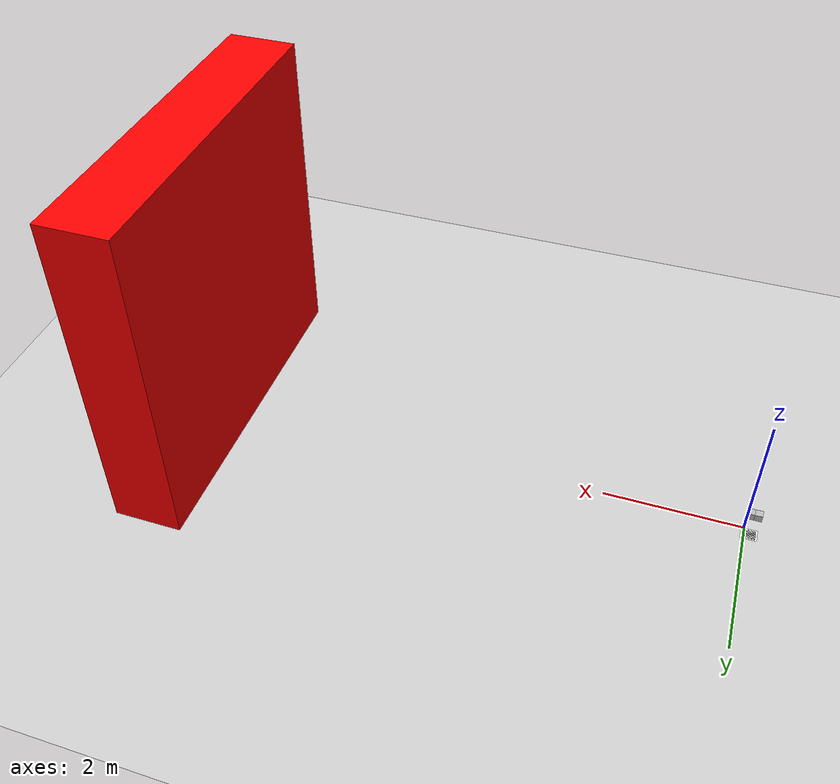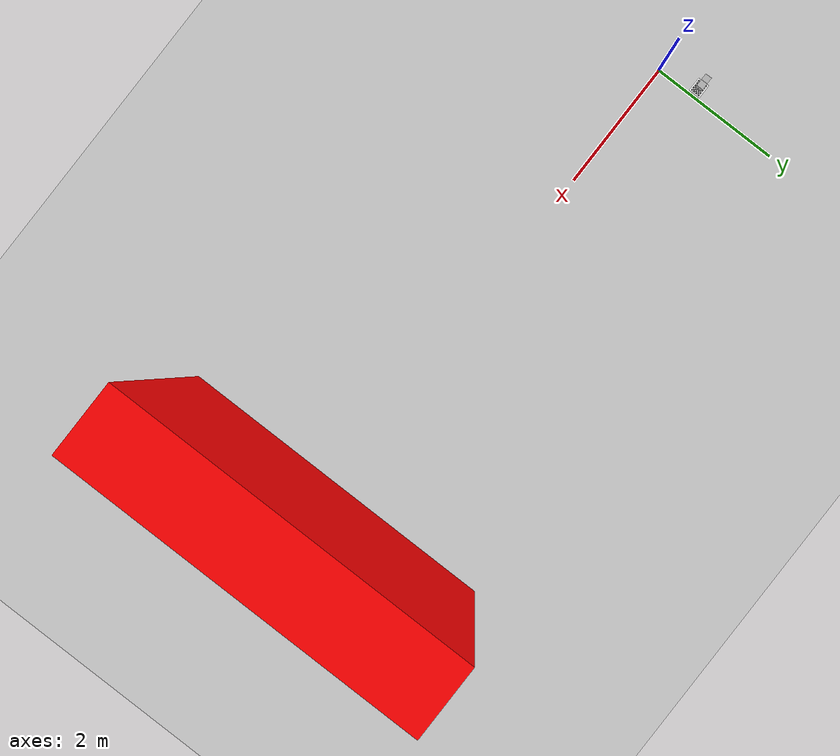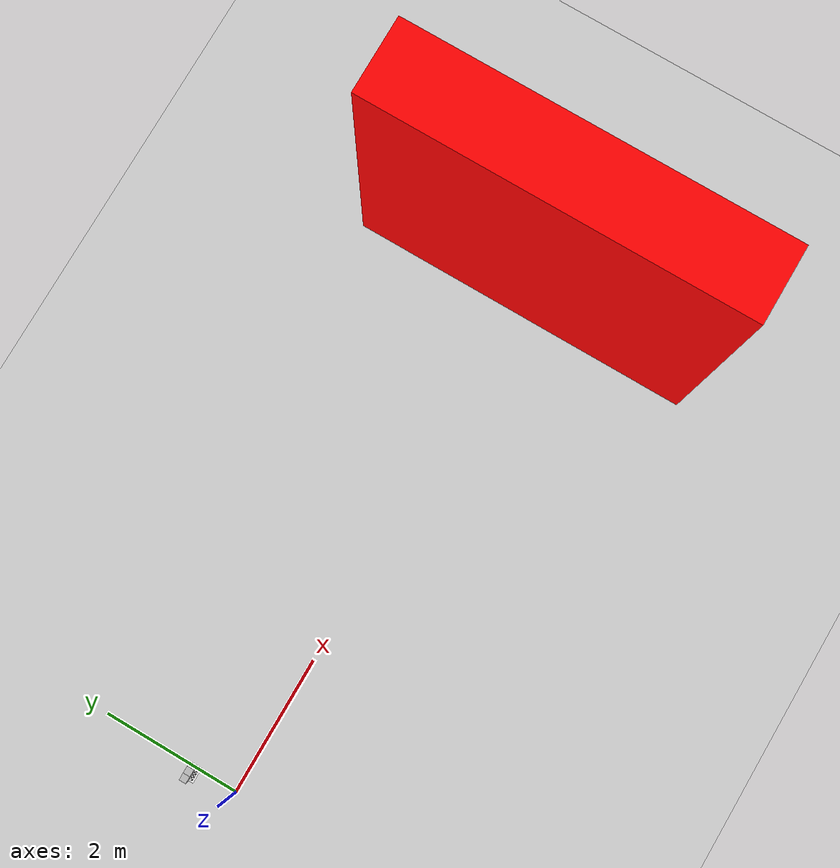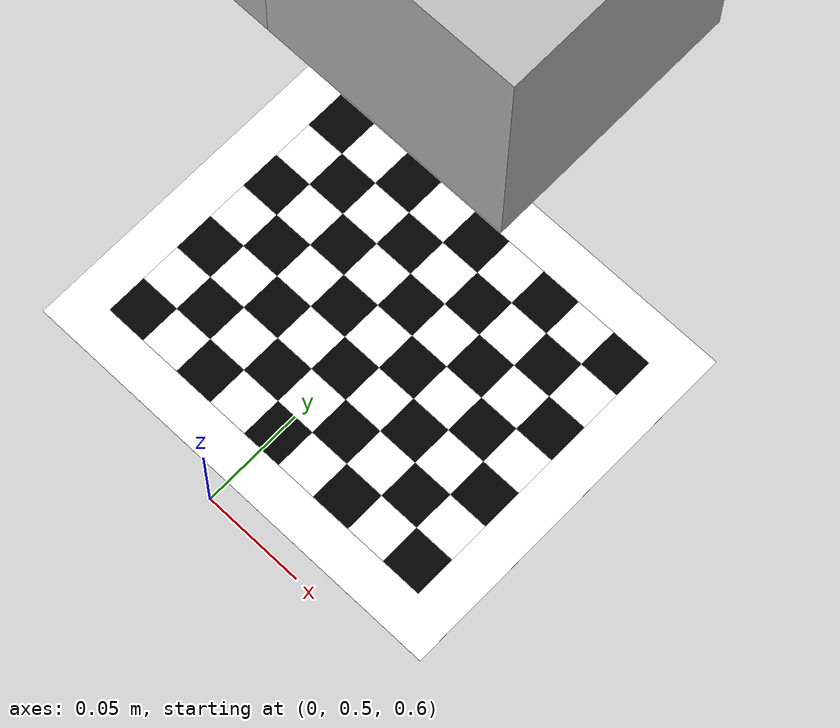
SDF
<sdf version="1.8">
 <world name="default">
  <plugin filename="gz-sim-user-commands-system" name="gz::sim::systems::UserCommands"/>
  <plugin filename="gz-sim-scene-broadcaster-system" name="gz::sim::systems::SceneBroadcaster"/>
  <plugin filename="gz-sim-sensors-system" name="gz::sim::systems::Sensors">
   <render_engine>ogre</render_engine>
  </plugin>
  <physics name="ode_tuned" type="ode">
   <max_step_size>0.001</max_step_size>
   <real_time_factor>1.0</real_time_factor>
   <ode>
    <solver><type>world</type><iters>200</iters><sor>1.3</sor></solver>
    <constraints><cfm>1e-6</cfm><erp>0.2</erp></constraints>
   </ode>
  </physics>
  <plugin filename="gz-sim-physics-system" name="gz::sim::systems::Physics"/>
  <include><uri>https://fuel.gazebosim.org/1.0/OpenRobotics/models/Sun</uri></include>
  <include><uri>https://fuel.gazebosim.org/1.0/OpenRobotics/models/Ground Plane</uri></include>
  <include><pose>0 0.6 0.6 0 0.0 1.570796327</pose><uri>checkerboard.sdf</uri></include>
  <model name="box">
   <pose>8.0 0 2.5 9.3851161270657419e-17
        -5.6069031016222445e-17 -3.9093360295039407e-19</pose>
   <link name="box_link">
    <inertial>
     <inertia><ixx>0.16666</ixx><ixy>0</ixy><ixz>0</ixz><iyy>0.16666</iyy><iyz>0</iyz><izz>0.16666</izz></inertia>
     <mass>1</mass>
    </inertial>
    <collision name="box_collision"><geometry><box><size>1.0 5.0 5.0</size></box></geometry></collision>
    <visual name="box_visual">
     <geometry><box><size>1.0 5.0 5.0</size></box></geometry>
     <material>
      <ambient>0.300000012 0.300000012 0.300000012 1</ambient>
      <diffuse>1 0 0 1</diffuse>
      <specular>1 1 1 1</specular>
     </material>
    </visual>
   </link>
   <static>false</static>
  </model>
  <model name="left_camera">
   <static>true</static>
   <pose>0.05 0.6 1.0 0 0.0 0.0</pose>
   <link name="link">
    <visual name="visual"><geometry><box><size>0.1 0.1 0.1</size></box></geometry></visual>
    <sensor name="camera" type="wideanglecamera">
     <pose>0 0 0 0 1.570796327 0</pose>
     <topic>left_camera</topic>
     <visualize>true</visualize>
     <update_rate>30</update_rate>
     <always_on>true</always_on>
     <camera>
      <horizontal_fov>1.9</horizontal_fov>
      <image><width>1920</width><height>1080</height></image>
      <clip><near>0.1</near><far>100</far></clip>
      <lens>
       <type>equidistant</type>
       <scale_to_hfov>true</scale_to_hfov>
       <cutoff_angle>1.5707</cutoff_angle>
       <env_texture_size>2048</env_texture_size>
      </lens>
      <noise><type>gaussian</type><mean>0.0</mean><stddev>0.005</stddev></noise>
     </camera>
    </sensor>
   </link>
  </model>
  <model name="right_camera">
   <static>true</static>
   <pose>-0.05 0.6 1.0 0 0.0 0.0</pose>
   <link name="link">
    <visual name="visual"><geometry><box><size>0.1 0.1 0.1</size></box></geometry></visual>
    <sensor name="camera" type="wideanglecamera">
     <pose>0 0 0 0 1.570796327 0</pose>
     <topic>right_camera</topic>
     <visualize>true</visualize>
     <update_rate>30</update_rate>
     <always_on>true</always_on>
     <camera>
      <horizontal_fov>1.9</horizontal_fov>
      <image><width>1920</width><height>1080</height></image>
      <clip><near>0.1</near><far>100</far></clip>
      <lens>
       <type>equidistant</type>
       <scale_to_hfov>true</scale_to_hfov>
       <cutoff_angle>1.5707</cutoff_angle>
       <env_texture_size>2048</env_texture_size>
      </lens>
      <noise><type>gaussian</type><mean>0.0</mean><stddev>0.005</stddev></noise>
     </camera>
    </sensor>
   </link>
  </model>
 </world>
</sdf>

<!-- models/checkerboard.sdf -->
<sdf version="1.4">
  <model name="checkerboard_7_9_0_02">
  <static>true</static>
  <link name="checkerboard_7_9_0_02_body">
      <visual name="checker_0_0">
        <pose>-0.060000000000000005 -0.08 0 0 0 0</pose>
        <geometry>
          <box>
            <size>0.02 0.02 0.0002</size>
          </box>
        </geometry>
        <material>
          <ambient>0 0 0 1</ambient>
          <diffuse>0 0 0 1</diffuse>
          <specular>0 0 0 1</specular>
          <emissive>0 0 0 1</emissive>
        </material>
      </visual>
      <visual name="checker_0_1">
        <pose>-0.060000000000000005 -0.06 0 0 0 0</pose>
        <geometry>
          <box>
            <size>0.02 0.02 0.0002</size>
          </box>
        </geometry>
        <material>
          <ambient>1 1 1 1</ambient>
          <diffuse>1 1 1 1</diffuse>
          <specular>1 1 1 1</specular>
          <emissive>1 1 1 1</emissive>
        </material>
      </visual>
      <visual name="checker_0_2">
        <pose>-0.060000000000000005 -0.039999999999999994 0 0 0 0</pose>
        <geometry>
          <box>
            <size>0.02 0.02 0.0002</size>
          </box>
        </geometry>
        <material>
          <ambient>0 0 0 1</ambient>
          <diffuse>0 0 0 1</diffuse>
          <specular>0 0 0 1</specular>
          <emissive>0 0 0 1</emissive>
        </material>
      </visual>
      <visual name="checker_0_3">
        <pose>-0.060000000000000005 -0.020000000000000004 0 0 0 0</pose>
        <geometry>
          <box>
            <size>0.02 0.02 0.0002</size>
          </box>
        </geometry>
        <material>
          <ambient>1 1 1 1</ambient>
          <diffuse>1 1 1 1</diffuse>
          <specular>1 1 1 1</specular>
          <emissive>1 1 1 1</emissive>
        </material>
      </visual>
      <visual name="checker_0_4">
        <pose>-0.060000000000000005 0.0 0 0 0 0</pose>
        <geometry>
          <box>
            <size>0.02 0.02 0.0002</size>
          </box>
        </geometry>
        <material>
          <ambient>0 0 0 1</ambient>
          <diffuse>0 0 0 1</diffuse>
          <specular>0 0 0 1</specular>
          <emissive>0 0 0 1</emissive>
        </material>
      </visual>
      <visual name="checker_0_5">
        <pose>-0.060000000000000005 0.020000000000000004 0 0 0 0</pose>
        <geometry>
          <box>
            <size>0.02 0.02 0.0002</size>
          </box>
        </geometry>
        <material>
          <ambient>1 1 1 1</ambient>
          <diffuse>1 1 1 1</diffuse>
          <specular>1 1 1 1</specular>
          <emissive>1 1 1 1</emissive>
        </material>
      </visual>
      <visual name="checker_0_6">
        <pose>-0.060000000000000005 0.04000000000000001 0 0 0 0</pose>
        <geometry>
          <box>
            <size>0.02 0.02 0.0002</size>
          </box>
        </geometry>
        <material>
          <ambient>0 0 0 1</ambient>
          <diffuse>0 0 0 1</diffuse>
          <specular>0 0 0 1</specular>
          <emissive>0 0 0 1</emissive>
        </material>
      </visual>
      <visual name="checker_0_7">
        <pose>-0.060000000000000005 0.060000000000000026 0 0 0 0</pose>
        <geometry>
          <box>
            <size>0.02 0.02 0.0002</size>
          </box>
        </geometry>
        <material>
          <ambient>1 1 1 1</ambient>
          <diffuse>1 1 1 1</diffuse>
          <specular>1 1 1 1</specular>
          <emissive>1 1 1 1</emissive>
        </material>
      </visual>
      <visual name="checker_0_8">
        <pose>-0.060000000000000005 0.08000000000000002 0 0 0 0</pose>
        <geometry>
          <box>
            <size>0.02 0.02 0.0002</size>
          </box>
        </geometry>
        <material>
          <ambient>0 0 0 1</ambient>
          <diffuse>0 0 0 1</diffuse>
          <specular>0 0 0 1</specular>
          <emissive>0 0 0 1</emissive>
        </material>
      </visual>
      <visual name="checker_1_0">
        <pose>-0.04000000000000001 -0.08 0 0 0 0</pose>
        <geometry>
          <box>
            <size>0.02 0.02 0.0002</size>
          </box>
        </geometry>
        <material>
          <ambient>1 1 1 1</ambient>
          <diffuse>1 1 1 1</diffuse>
          <specular>1 1 1 1</specular>
          <emissive>1 1 1 1</emissive>
        </material>
      </visual>
      <visual name="checker_1_1">
        <pose>-0.04000000000000001 -0.06 0 0 0 0</pose>
        <geometry>
          <box>
            <size>0.02 0.02 0.0002</size>
          </box>
        </geometry>
        <material>
          <ambient>0 0 0 1</ambient>
          <diffuse>0 0 0 1</diffuse>
          <specular>0 0 0 1</specular>
          <emissive>0 0 0 1</emissive>
        </material>
      </visual>
      <visual name="checker_1_2">
        <pose>-0.04000000000000001 -0.039999999999999994 0 0 0 0</pose>
        <geometry>
          <box>
            <size>0.02 0.02 0.0002</size>
          </box>
        </geometry>
        <material>
          <ambient>1 1 1 1</ambient>
          <diffuse>1 1 1 1</diffuse>
          <specular>1 1 1 1</specular>
          <emissive>1 1 1 1</emissive>
        </material>
      </visual>
      <visual name="checker_1_3">
        <pose>-0.04000000000000001 -0.020000000000000004 0 0 0 0</pose>
        <geometry>
          <box>
            <size>0.02 0.02 0.0002</size>
          </box>
        </geometry>
        <material>
          <ambient>0 0 0 1</ambient>
          <diffuse>0 0 0 1</diffuse>
          <specular>0 0 0 1</specular>
          <emissive>0 0 0 1</emissive>
        </material>
      </visual>
      <visual name="checker_1_4">
        <pose>-0.04000000000000001 0.0 0 0 0 0</pose>
        <geometry>
          <box>
            <size>0.02 0.02 0.0002</size>
          </box>
        </geometry>
        <material>
          <ambient>1 1 1 1</ambient>
          <diffuse>1 1 1 1</diffuse>
          <specular>1 1 1 1</specular>
          <emissive>1 1 1 1</emissive>
        </material>
      </visual>
      <visual name="checker_1_5">
        <pose>-0.04000000000000001 0.020000000000000004 0 0 0 0</pose>
        <geometry>
          <box>
            <size>0.02 0.02 0.0002</size>
          </box>
        </geometry>
        <material>
          <ambient>0 0 0 1</ambient>
          <diffuse>0 0 0 1</diffuse>
          <specular>0 0 0 1</specular>
          <emissive>0 0 0 1</emissive>
        </material>
      </visual>
      <visual name="checker_1_6">
        <pose>-0.04000000000000001 0.04000000000000001 0 0 0 0</pose>
        <geometry>
          <box>
            <size>0.02 0.02 0.0002</size>
          </box>
        </geometry>
        <material>
          <ambient>1 1 1 1</ambient>
          <diffuse>1 1 1 1</diffuse>
          <specular>1 1 1 1</specular>
          <emissive>1 1 1 1</emissive>
        </material>
      </visual>
      <visual name="checker_1_7">
        <pose>-0.04000000000000001 0.060000000000000026 0 0 0 0</pose>
        <geometry>
          <box>
            <size>0.02 0.02 0.0002</size>
          </box>
        </geometry>
        <material>
          <ambient>0 0 0 1</ambient>
          <diffuse>0 0 0 1</diffuse>
          <specular>0 0 0 1</specular>
          <emissive>0 0 0 1</emissive>
        </material>
      </visual>
      <visual name="checker_1_8">
        <pose>-0.04000000000000001 0.08000000000000002 0 0 0 0</pose>
        <geometry>
          <box>
            <size>0.02 0.02 0.0002</size>
          </box>
        </geometry>
        <material>
          <ambient>1 1 1 1</ambient>
          <diffuse>1 1 1 1</diffuse>
          <specular>1 1 1 1</specular>
          <emissive>1 1 1 1</emissive>
        </material>
      </visual>
      <visual name="checker_2_0">
        <pose>-0.020000000000000004 -0.08 0 0 0 0</pose>
        <geometry>
          <box>
            <size>0.02 0.02 0.0002</size>
          </box>
        </geometry>
        <material>
          <ambient>0 0 0 1</ambient>
          <diffuse>0 0 0 1</diffuse>
          <specular>0 0 0 1</specular>
          <emissive>0 0 0 1</emissive>
        </material>
      </visual>
      <visual name="checker_2_1">
        <pose>-0.020000000000000004 -0.06 0 0 0 0</pose>
        <geometry>
          <box>
            <size>0.02 0.02 0.0002</size>
          </box>
        </geometry>
        <material>
          <ambient>1 1 1 1</ambient>
          <diffuse>1 1 1 1</diffuse>
          <specular>1 1 1 1</specular>
          <emissive>1 1 1 1</emissive>
        </material>
      </visual>
      <visual name="checker_2_2">
        <pose>-0.020000000000000004 -0.039999999999999994 0 0 0 0</pose>
        <geometry>
          <box>
            <size>0.02 0.02 0.0002</size>
          </box>
        </geometry>
        <material>
          <ambient>0 0 0 1</ambient>
          <diffuse>0 0 0 1</diffuse>
          <specular>0 0 0 1</specular>
          <emissive>0 0 0 1</emissive>
        </material>
      </visual>
      <visual name="checker_2_3">
        <pose>-0.020000000000000004 -0.020000000000000004 0 0 0 0</pose>
        <geometry>
          <box>
            <size>0.02 0.02 0.0002</size>
          </box>
        </geometry>
        <material>
          <ambient>1 1 1 1</ambient>
          <diffuse>1 1 1 1</diffuse>
          <specular>1 1 1 1</specular>
          <emissive>1 1 1 1</emissive>
        </material>
      </visual>
      <visual name="checker_2_4">
        <pose>-0.020000000000000004 0.0 0 0 0 0</pose>
        <geometry>
          <box>
            <size>0.02 0.02 0.0002</size>
          </box>
        </geometry>
        <material>
          <ambient>0 0 0 1</ambient>
          <diffuse>0 0 0 1</diffuse>
          <specular>0 0 0 1</specular>
          <emissive>0 0 0 1</emissive>
        </material>
      </visual>
      <visual name="checker_2_5">
        <pose>-0.020000000000000004 0.020000000000000004 0 0 0 0</pose>
        <geometry>
          <box>
            <size>0.02 0.02 0.0002</size>
          </box>
        </geometry>
        <material>
          <ambient>1 1 1 1</ambient>
          <diffuse>1 1 1 1</diffuse>
          <specular>1 1 1 1</specular>
          <emissive>1 1 1 1</emissive>
        </material>
      </visual>
      <visual name="checker_2_6">
        <pose>-0.020000000000000004 0.04000000000000001 0 0 0 0</pose>
        <geometry>
          <box>
            <size>0.02 0.02 0.0002</size>
          </box>
        </geometry>
        <material>
          <ambient>0 0 0 1</ambient>
          <diffuse>0 0 0 1</diffuse>
          <specular>0 0 0 1</specular>
          <emissive>0 0 0 1</emissive>
        </material>
      </visual>
      <visual name="checker_2_7">
        <pose>-0.020000000000000004 0.060000000000000026 0 0 0 0</pose>
        <geometry>
          <box>
            <size>0.02 0.02 0.0002</size>
          </box>
        </geometry>
        <material>
          <ambient>1 1 1 1</ambient>
          <diffuse>1 1 1 1</diffuse>
          <specular>1 1 1 1</specular>
          <emissive>1 1 1 1</emissive>
        </material>
      </visual>
      <visual name="checker_2_8">
        <pose>-0.020000000000000004 0.08000000000000002 0 0 0 0</pose>
        <geometry>
          <box>
            <size>0.02 0.02 0.0002</size>
          </box>
        </geometry>
        <material>
          <ambient>0 0 0 1</ambient>
          <diffuse>0 0 0 1</diffuse>
          <specular>0 0 0 1</specular>
          <emissive>0 0 0 1</emissive>
        </material>
      </visual>
      <visual name="checker_3_0">
        <pose>-1.3877787807814457e-17 -0.08 0 0 0 0</pose>
        <geometry>
          <box>
            <size>0.02 0.02 0.0002</size>
          </box>
        </geometry>
        <material>
          <ambient>1 1 1 1</ambient>
          <diffuse>1 1 1 1</diffuse>
          <specular>1 1 1 1</specular>
          <emissive>1 1 1 1</emissive>
        </material>
      </visual>
      <visual name="checker_3_1">
        <pose>-1.3877787807814457e-17 -0.06 0 0 0 0</pose>
        <geometry>
          <box>
            <size>0.02 0.02 0.0002</size>
          </box>
        </geometry>
        <material>
          <ambient>0 0 0 1</ambient>
          <diffuse>0 0 0 1</diffuse>
          <specular>0 0 0 1</specular>
          <emissive>0 0 0 1</emissive>
        </material>
      </visual>
      <visual name="checker_3_2">
        <pose>-1.3877787807814457e-17 -0.039999999999999994 0 0 0 0</pose>
        <geometry>
          <box>
            <size>0.02 0.02 0.0002</size>
          </box>
        </geometry>
        <material>
          <ambient>1 1 1 1</ambient>
          <diffuse>1 1 1 1</diffuse>
          <specular>1 1 1 1</specular>
          <emissive>1 1 1 1</emissive>
        </material>
      </visual>
      <visual name="checker_3_3">
        <pose>-1.3877787807814457e-17 -0.020000000000000004 0 0 0 0</pose>
        <geometry>
          <box>
            <size>0.02 0.02 0.0002</size>
          </box>
        </geometry>
        <material>
          <ambient>0 0 0 1</ambient>
          <diffuse>0 0 0 1</diffuse>
          <specular>0 0 0 1</specular>
          <emissive>0 0 0 1</emissive>
        </material>
      </visual>
      <visual name="checker_3_4">
        <pose>-1.3877787807814457e-17 0.0 0 0 0 0</pose>
        <geometry>
          <box>
            <size>0.02 0.02 0.0002</size>
          </box>
        </geometry>
        <material>
          <ambient>1 1 1 1</ambient>
          <diffuse>1 1 1 1</diffuse>
          <specular>1 1 1 1</specular>
          <emissive>1 1 1 1</emissive>
        </material>
      </visual>
      <visual name="checker_3_5">
        <pose>-1.3877787807814457e-17 0.020000000000000004 0 0 0 0</pose>
        <geometry>
          <box>
            <size>0.02 0.02 0.0002</size>
          </box>
        </geometry>
        <material>
          <ambient>0 0 0 1</ambient>
          <diffuse>0 0 0 1</diffuse>
          <specular>0 0 0 1</specular>
          <emissive>0 0 0 1</emissive>
        </material>
      </visual>
      <visual name="checker_3_6">
        <pose>-1.3877787807814457e-17 0.04000000000000001 0 0 0 0</pose>
        <geometry>
          <box>
            <size>0.02 0.02 0.0002</size>
          </box>
        </geometry>
        <material>
          <ambient>1 1 1 1</ambient>
          <diffuse>1 1 1 1</diffuse>
          <specular>1 1 1 1</specular>
          <emissive>1 1 1 1</emissive>
        </material>
      </visual>
      <visual name="checker_3_7">
        <pose>-1.3877787807814457e-17 0.060000000000000026 0 0 0 0</pose>
        <geometry>
          <box>
            <size>0.02 0.02 0.0002</size>
          </box>
        </geometry>
        <material>
          <ambient>0 0 0 1</ambient>
          <diffuse>0 0 0 1</diffuse>
          <specular>0 0 0 1</specular>
          <emissive>0 0 0 1</emissive>
        </material>
      </visual>
      <visual name="checker_3_8">
        <pose>-1.3877787807814457e-17 0.08000000000000002 0 0 0 0</pose>
        <geometry>
          <box>
            <size>0.02 0.02 0.0002</size>
          </box>
        </geometry>
        <material>
          <ambient>1 1 1 1</ambient>
          <diffuse>1 1 1 1</diffuse>
          <specular>1 1 1 1</specular>
          <emissive>1 1 1 1</emissive>
        </material>
      </visual>
      <visual name="checker_4_0">
        <pose>0.01999999999999999 -0.08 0 0 0 0</pose>
        <geometry>
          <box>
            <size>0.02 0.02 0.0002</size>
          </box>
        </geometry>
        <material>
          <ambient>0 0 0 1</ambient>
          <diffuse>0 0 0 1</diffuse>
          <specular>0 0 0 1</specular>
          <emissive>0 0 0 1</emissive>
        </material>
      </visual>
      <visual name="checker_4_1">
        <pose>0.01999999999999999 -0.06 0 0 0 0</pose>
        <geometry>
          <box>
            <size>0.02 0.02 0.0002</size>
          </box>
        </geometry>
        <material>
          <ambient>1 1 1 1</ambient>
          <diffuse>1 1 1 1</diffuse>
          <specular>1 1 1 1</specular>
          <emissive>1 1 1 1</emissive>
        </material>
      </visual>
      <visual name="checker_4_2">
        <pose>0.01999999999999999 -0.039999999999999994 0 0 0 0</pose>
        <geometry>
          <box>
            <size>0.02 0.02 0.0002</size>
          </box>
        </geometry>
        <material>
          <ambient>0 0 0 1</ambient>
          <diffuse>0 0 0 1</diffuse>
          <specular>0 0 0 1</specular>
          <emissive>0 0 0 1</emissive>
        </material>
      </visual>
      <visual name="checker_4_3">
        <pose>0.01999999999999999 -0.020000000000000004 0 0 0 0</pose>
        <geometry>
          <box>
            <size>0.02 0.02 0.0002</size>
          </box>
        </geometry>
        <material>
          <ambient>1 1 1 1</ambient>
          <diffuse>1 1 1 1</diffuse>
          <specular>1 1 1 1</specular>
          <emissive>1 1 1 1</emissive>
        </material>
      </visual>
      <visual name="checker_4_4">
        <pose>0.01999999999999999 0.0 0 0 0 0</pose>
        <geometry>
          <box>
            <size>0.02 0.02 0.0002</size>
          </box>
        </geometry>
        <material>
          <ambient>0 0 0 1</ambient>
          <diffuse>0 0 0 1</diffuse>
          <specular>0 0 0 1</specular>
          <emissive>0 0 0 1</emissive>
        </material>
      </visual>
      <visual name="checker_4_5">
        <pose>0.01999999999999999 0.020000000000000004 0 0 0 0</pose>
        <geometry>
          <box>
            <size>0.02 0.02 0.0002</size>
          </box>
        </geometry>
        <material>
          <ambient>1 1 1 1</ambient>
          <diffuse>1 1 1 1</diffuse>
          <specular>1 1 1 1</specular>
          <emissive>1 1 1 1</emissive>
        </material>
      </visual>
      <visual name="checker_4_6">
        <pose>0.01999999999999999 0.04000000000000001 0 0 0 0</pose>
        <geometry>
          <box>
            <size>0.02 0.02 0.0002</size>
          </box>
        </geometry>
        <material>
          <ambient>0 0 0 1</ambient>
          <diffuse>0 0 0 1</diffuse>
          <specular>0 0 0 1</specular>
          <emissive>0 0 0 1</emissive>
        </material>
      </visual>
      <visual name="checker_4_7">
        <pose>0.01999999999999999 0.060000000000000026 0 0 0 0</pose>
        <geometry>
          <box>
            <size>0.02 0.02 0.0002</size>
          </box>
        </geometry>
        <material>
          <ambient>1 1 1 1</ambient>
          <diffuse>1 1 1 1</diffuse>
          <specular>1 1 1 1</specular>
          <emissive>1 1 1 1</emissive>
        </material>
      </visual>
      <visual name="checker_4_8">
        <pose>0.01999999999999999 0.08000000000000002 0 0 0 0</pose>
        <geometry>
          <box>
            <size>0.02 0.02 0.0002</size>
          </box>
        </geometry>
        <material>
          <ambient>0 0 0 1</ambient>
          <diffuse>0 0 0 1</diffuse>
          <specular>0 0 0 1</specular>
          <emissive>0 0 0 1</emissive>
        </material>
      </visual>
      <visual name="checker_5_0">
        <pose>0.039999999999999994 -0.08 0 0 0 0</pose>
        <geometry>
          <box>
            <size>0.02 0.02 0.0002</size>
          </box>
        </geometry>
        <material>
          <ambient>1 1 1 1</ambient>
          <diffuse>1 1 1 1</diffuse>
          <specular>1 1 1 1</specular>
          <emissive>1 1 1 1</emissive>
        </material>
      </visual>
      <visual name="checker_5_1">
        <pose>0.039999999999999994 -0.06 0 0 0 0</pose>
        <geometry>
          <box>
            <size>0.02 0.02 0.0002</size>
          </box>
        </geometry>
        <material>
          <ambient>0 0 0 1</ambient>
          <diffuse>0 0 0 1</diffuse>
          <specular>0 0 0 1</specular>
          <emissive>0 0 0 1</emissive>
        </material>
      </visual>
      <visual name="checker_5_2">
        <pose>0.039999999999999994 -0.039999999999999994 0 0 0 0</pose>
        <geometry>
          <box>
            <size>0.02 0.02 0.0002</size>
          </box>
        </geometry>
        <material>
          <ambient>1 1 1 1</ambient>
          <diffuse>1 1 1 1</diffuse>
          <specular>1 1 1 1</specular>
          <emissive>1 1 1 1</emissive>
        </material>
      </visual>
      <visual name="checker_5_3">
        <pose>0.039999999999999994 -0.020000000000000004 0 0 0 0</pose>
        <geometry>
          <box>
            <size>0.02 0.02 0.0002</size>
          </box>
        </geometry>
        <material>
          <ambient>0 0 0 1</ambient>
          <diffuse>0 0 0 1</diffuse>
          <specular>0 0 0 1</specular>
          <emissive>0 0 0 1</emissive>
        </material>
      </visual>
      <visual name="checker_5_4">
        <pose>0.039999999999999994 0.0 0 0 0 0</pose>
        <geometry>
          <box>
            <size>0.02 0.02 0.0002</size>
          </box>
        </geometry>
        <material>
          <ambient>1 1 1 1</ambient>
          <diffuse>1 1 1 1</diffuse>
          <specular>1 1 1 1</specular>
          <emissive>1 1 1 1</emissive>
        </material>
      </visual>
      <visual name="checker_5_5">
        <pose>0.039999999999999994 0.020000000000000004 0 0 0 0</pose>
        <geometry>
          <box>
            <size>0.02 0.02 0.0002</size>
          </box>
        </geometry>
        <material>
          <ambient>0 0 0 1</ambient>
          <diffuse>0 0 0 1</diffuse>
          <specular>0 0 0 1</specular>
          <emissive>0 0 0 1</emissive>
        </material>
      </visual>
      <visual name="checker_5_6">
        <pose>0.039999999999999994 0.04000000000000001 0 0 0 0</pose>
        <geometry>
          <box>
            <size>0.02 0.02 0.0002</size>
          </box>
        </geometry>
        <material>
          <ambient>1 1 1 1</ambient>
          <diffuse>1 1 1 1</diffuse>
          <specular>1 1 1 1</specular>
          <emissive>1 1 1 1</emissive>
        </material>
      </visual>
      <visual name="checker_5_7">
        <pose>0.039999999999999994 0.060000000000000026 0 0 0 0</pose>
        <geometry>
          <box>
            <size>0.02 0.02 0.0002</size>
          </box>
        </geometry>
        <material>
          <ambient>0 0 0 1</ambient>
          <diffuse>0 0 0 1</diffuse>
          <specular>0 0 0 1</specular>
          <emissive>0 0 0 1</emissive>
        </material>
      </visual>
      <visual name="checker_5_8">
        <pose>0.039999999999999994 0.08000000000000002 0 0 0 0</pose>
        <geometry>
          <box>
            <size>0.02 0.02 0.0002</size>
          </box>
        </geometry>
        <material>
          <ambient>1 1 1 1</ambient>
          <diffuse>1 1 1 1</diffuse>
          <specular>1 1 1 1</specular>
          <emissive>1 1 1 1</emissive>
        </material>
      </visual>
      <visual name="checker_6_0">
        <pose>0.06 -0.08 0 0 0 0</pose>
        <geometry>
          <box>
            <size>0.02 0.02 0.0002</size>
          </box>
        </geometry>
        <material>
          <ambient>0 0 0 1</ambient>
          <diffuse>0 0 0 1</diffuse>
          <specular>0 0 0 1</specular>
          <emissive>0 0 0 1</emissive>
        </material>
      </visual>
      <visual name="checker_6_1">
        <pose>0.06 -0.06 0 0 0 0</pose>
        <geometry>
          <box>
            <size>0.02 0.02 0.0002</size>
          </box>
        </geometry>
        <material>
          <ambient>1 1 1 1</ambient>
          <diffuse>1 1 1 1</diffuse>
          <specular>1 1 1 1</specular>
          <emissive>1 1 1 1</emissive>
        </material>
      </visual>
      <visual name="checker_6_2">
        <pose>0.06 -0.039999999999999994 0 0 0 0</pose>
        <geometry>
          <box>
            <size>0.02 0.02 0.0002</size>
          </box>
        </geometry>
        <material>
          <ambient>0 0 0 1</ambient>
          <diffuse>0 0 0 1</diffuse>
          <specular>0 0 0 1</specular>
          <emissive>0 0 0 1</emissive>
        </material>
      </visual>
      <visual name="checker_6_3">
        <pose>0.06 -0.020000000000000004 0 0 0 0</pose>
        <geometry>
          <box>
            <size>0.02 0.02 0.0002</size>
          </box>
        </geometry>
        <material>
          <ambient>1 1 1 1</ambient>
          <diffuse>1 1 1 1</diffuse>
          <specular>1 1 1 1</specular>
          <emissive>1 1 1 1</emissive>
        </material>
      </visual>
      <visual name="checker_6_4">
        <pose>0.06 0.0 0 0 0 0</pose>
        <geometry>
          <box>
            <size>0.02 0.02 0.0002</size>
          </box>
        </geometry>
        <material>
          <ambient>0 0 0 1</ambient>
          <diffuse>0 0 0 1</diffuse>
          <specular>0 0 0 1</specular>
          <emissive>0 0 0 1</emissive>
        </material>
      </visual>
      <visual name="checker_6_5">
        <pose>0.06 0.020000000000000004 0 0 0 0</pose>
        <geometry>
          <box>
            <size>0.02 0.02 0.0002</size>
          </box>
        </geometry>
        <material>
          <ambient>1 1 1 1</ambient>
          <diffuse>1 1 1 1</diffuse>
          <specular>1 1 1 1</specular>
          <emissive>1 1 1 1</emissive>
        </material>
      </visual>
      <visual name="checker_6_6">
        <pose>0.06 0.04000000000000001 0 0 0 0</pose>
        <geometry>
          <box>
            <size>0.02 0.02 0.0002</size>
          </box>
        </geometry>
        <material>
          <ambient>0 0 0 1</ambient>
          <diffuse>0 0 0 1</diffuse>
          <specular>0 0 0 1</specular>
          <emissive>0 0 0 1</emissive>
        </material>
      </visual>
      <visual name="checker_6_7">
        <pose>0.06 0.060000000000000026 0 0 0 0</pose>
        <geometry>
          <box>
            <size>0.02 0.02 0.0002</size>
          </box>
        </geometry>
        <material>
          <ambient>1 1 1 1</ambient>
          <diffuse>1 1 1 1</diffuse>
          <specular>1 1 1 1</specular>
          <emissive>1 1 1 1</emissive>
        </material>
      </visual>
      <visual name="checker_6_8">
        <pose>0.06 0.08000000000000002 0 0 0 0</pose>
        <geometry>
          <box>
            <size>0.02 0.02 0.0002</size>
          </box>
        </geometry>
        <material>
          <ambient>0 0 0 1</ambient>
          <diffuse>0 0 0 1</diffuse>
          <specular>0 0 0 1</specular>
          <emissive>0 0 0 1</emissive>
        </material>
      </visual>
      <visual name="checker_backdrop">
        <pose>0 0 0 0 0 0</pose>
        <geometry>
          <box>
            <size>0.18 0.22 0.0001</size>
          </box>
        </geometry>
        <material>
          <ambient>1 1 1 1</ambient>
          <diffuse>1 1 1 1</diffuse>
          <specular>1 1 1 1</specular>
          <emissive>1 1 1 1</emissive>
        </material>
      </visual>
    </link>
  </model>
</sdf>
